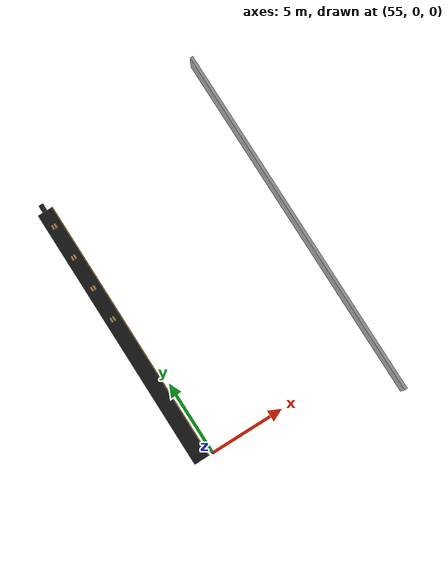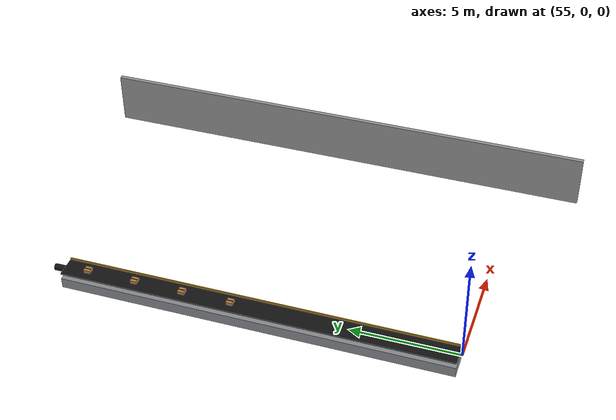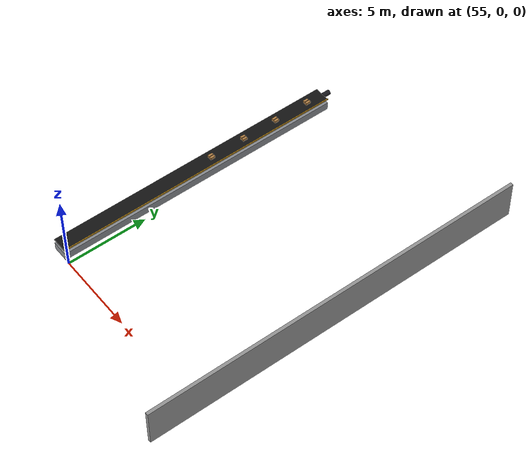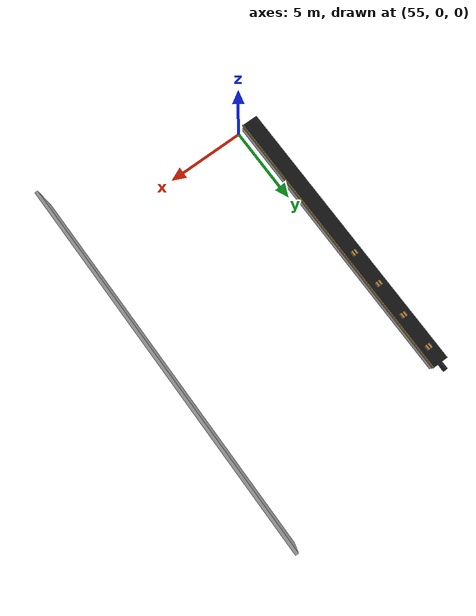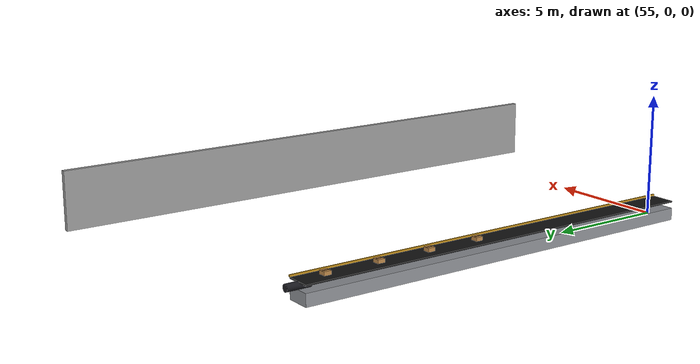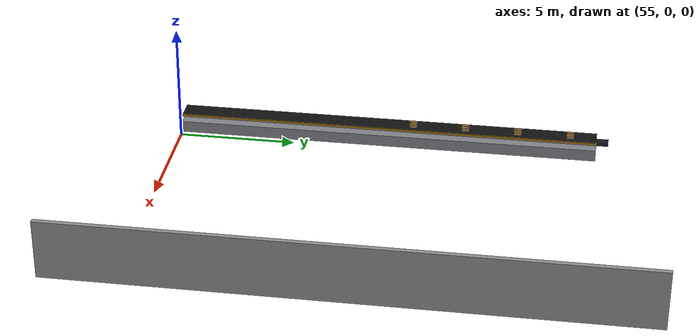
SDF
<sdf version="1.7">
 <world name="warehouse_layout2">
  <model name="ground_plane">
   <static>true</static>
   <link name="link">
    <collision name="collision">
     <geometry><plane><normal>0.0 0.0 1</normal><size>1 1</size></plane></geometry>
    </collision>
   </link>
  </model>
  <model name="east_belt_frame">
   <static>true</static>
   <pose>54.2 9.0 0.25 0 0 1.5708</pose>
   <link name="link">
    <collision name="collision"><geometry><box><size>18.0 1.0 0.5</size></box></geometry></collision>
    <visual name="visual_base">
     <geometry><box><size>18.0 1.0 0.5</size></box></geometry>
     <material>
      <ambient>0.55 0.56 0.58 1</ambient>
      <diffuse>0.55 0.56 0.58 1</diffuse>
      <specular>0.6 0.6 0.6 1</specular>
     </material>
    </visual>
   </link>
  </model>
  <model name="east_belt_deck">
   <static>true</static>
   <pose>54.2 9.0 0.775 0 0 1.5708</pose>
   <link name="link">
    <collision name="collision">
     <geometry><box><size>18.0 1.0 0.05</size></box></geometry>
     <surface><friction><ode><mu>1.0</mu><mu2>1.0</mu2></ode></friction></surface>
    </collision>
    <visual name="visual">
     <geometry><box><size>18.0 1.0 0.05</size></box></geometry>
     <material><ambient>0.08 0.08 0.08 1</ambient><diffuse>0.08 0.08 0.08 1</diffuse></material>
    </visual>
   </link>
  </model>
  <model name="east_belt_rail_right">
   <static>true</static>
   <pose>54.72499999999646 9.00000192843268 0.8400000000000001 0 0 1.5708</pose>
   <link name="link">
    <visual name="visual">
     <geometry><box><size>18.0 0.05 0.08</size></box></geometry>
     <material><ambient>0.75 0.55 0.1 1</ambient><diffuse>0.75 0.55 0.1 1</diffuse></material>
    </visual>
   </link>
  </model>
  <model name="east_belt_roller_end">
   <pose>54.199966941154074 17.999999999939284 0.65 1.5708 0 0</pose>
   <link name="roller_link">
    <inertial>
     <mass>0.5</mass>
     <inertia><ixx>0.01</ixx><iyy>0.01</iyy><izz>0.01</izz><ixy>0</ixy><ixz>0</ixz><iyz>0</iyz></inertia>
    </inertial>
    <visual name="visual">
     <geometry><cylinder><radius>0.15</radius><length>1.0</length></cylinder></geometry>
     <material>
      <ambient>0.1 0.1 0.12 1</ambient>
      <diffuse>0.1 0.1 0.12 1</diffuse>
      <specular>0.4 0.4 0.4 1</specular>
     </material>
    </visual>
    <collision name="collision">
     <geometry><cylinder><radius>0.15</radius><length>1.0</length></cylinder></geometry>
    </collision>
   </link>
   <joint name="spin_joint" type="revolute">
    <parent>world</parent>
    <child>roller_link</child>
    <axis><xyz>0 0 1</xyz><limit><lower>-1e16</lower><upper>1e16</upper></limit></axis>
   </joint>
   <plugin filename="libignition-gazebo-joint-controller-system.so" name="ignition::gazebo::systems::JointController">
    <joint_name>spin_joint</joint_name>
    <initial_velocity>6.0</initial_velocity>
   </plugin>
  </model>
  <model name="east_belt_pkg4">
   <pose>54.19999586764426 10.124999999992411 0.895 0 0 1.5708</pose>
   <link name="box_link">
    <inertial>
     <mass>0.2</mass>
     <inertia><ixx>0.001</ixx><iyy>0.001</iyy><izz>0.001</izz><ixy>0</ixy><ixz>0</ixz><iyz>0</iyz></inertia>
    </inertial>
    <visual name="visual_body">
     <geometry><box><size>0.3 0.3 0.15</size></box></geometry>
     <material><ambient>0.72 0.52 0.28 1</ambient><diffuse>0.72 0.52 0.28 1</diffuse></material>
    </visual>
    <visual name="visual_strap">
     <pose>0 0 0.076 0 0 0</pose>
     <geometry><box><size>0.3 0.045 0.002</size></box></geometry>
     <material><ambient>0.35 0.22 0.1 1</ambient><diffuse>0.35 0.22 0.1 1</diffuse></material>
    </visual>
    <collision name="collision">
     <geometry><box><size>0.3 0.3 0.15</size></box></geometry>
     <surface><friction><ode><mu>1.2</mu><mu2>1.2</mu2></ode></friction></surface>
    </collision>
   </link>
   <plugin filename="libignition-gazebo-velocity-control-system.so" name="ignition::gazebo::systems::VelocityControl">
    <link_name>box_link</link_name>
   </plugin>
  </model>
  <model name="east_belt_pkg5">
   <pose>54.19998760293278 12.37499999997723 0.895 0 0 1.5708</pose>
   <link name="box_link">
    <inertial>
     <mass>0.2</mass>
     <inertia><ixx>0.001</ixx><iyy>0.001</iyy><izz>0.001</izz><ixy>0</ixy><ixz>0</ixz><iyz>0</iyz></inertia>
    </inertial>
    <visual name="visual_body">
     <geometry><box><size>0.3 0.3 0.15</size></box></geometry>
     <material><ambient>0.72 0.52 0.28 1</ambient><diffuse>0.72 0.52 0.28 1</diffuse></material>
    </visual>
    <visual name="visual_strap">
     <pose>0 0 0.076 0 0 0</pose>
     <geometry><box><size>0.3 0.045 0.002</size></box></geometry>
     <material><ambient>0.35 0.22 0.1 1</ambient><diffuse>0.35 0.22 0.1 1</diffuse></material>
    </visual>
    <collision name="collision">
     <geometry><box><size>0.3 0.3 0.15</size></box></geometry>
     <surface><friction><ode><mu>1.2</mu><mu2>1.2</mu2></ode></friction></surface>
    </collision>
   </link>
   <plugin filename="libignition-gazebo-velocity-control-system.so" name="ignition::gazebo::systems::VelocityControl">
    <link_name>box_link</link_name>
   </plugin>
  </model>
  <model name="east_belt_pkg6">
   <pose>54.1999793382213 14.624999999962053 0.895 0 0 1.5708</pose>
   <link name="box_link">
    <inertial>
     <mass>0.2</mass>
     <inertia><ixx>0.001</ixx><iyy>0.001</iyy><izz>0.001</izz><ixy>0</ixy><ixz>0</ixz><iyz>0</iyz></inertia>
    </inertial>
    <visual name="visual_body">
     <geometry><box><size>0.3 0.3 0.15</size></box></geometry>
     <material><ambient>0.72 0.52 0.28 1</ambient><diffuse>0.72 0.52 0.28 1</diffuse></material>
    </visual>
    <visual name="visual_strap">
     <pose>0 0 0.076 0 0 0</pose>
     <geometry><box><size>0.3 0.045 0.002</size></box></geometry>
     <material><ambient>0.35 0.22 0.1 1</ambient><diffuse>0.35 0.22 0.1 1</diffuse></material>
    </visual>
    <collision name="collision">
     <geometry><box><size>0.3 0.3 0.15</size></box></geometry>
     <surface><friction><ode><mu>1.2</mu><mu2>1.2</mu2></ode></friction></surface>
    </collision>
   </link>
   <plugin filename="libignition-gazebo-velocity-control-system.so" name="ignition::gazebo::systems::VelocityControl">
    <link_name>box_link</link_name>
   </plugin>
  </model>
  <model name="east_belt_pkg7">
   <pose>54.199971073509815 16.874999999946873 0.895 0 0 1.5708</pose>
   <link name="box_link">
    <inertial>
     <mass>0.2</mass>
     <inertia><ixx>0.001</ixx><iyy>0.001</iyy><izz>0.001</izz><ixy>0</ixy><ixz>0</ixz><iyz>0</iyz></inertia>
    </inertial>
    <visual name="visual_body">
     <geometry><box><size>0.3 0.3 0.15</size></box></geometry>
     <material><ambient>0.72 0.52 0.28 1</ambient><diffuse>0.72 0.52 0.28 1</diffuse></material>
    </visual>
    <visual name="visual_strap">
     <pose>0 0 0.076 0 0 0</pose>
     <geometry><box><size>0.3 0.045 0.002</size></box></geometry>
     <material><ambient>0.35 0.22 0.1 1</ambient><diffuse>0.35 0.22 0.1 1</diffuse></material>
    </visual>
    <collision name="collision">
     <geometry><box><size>0.3 0.3 0.15</size></box></geometry>
     <surface><friction><ode><mu>1.2</mu><mu2>1.2</mu2></ode></friction></surface>
    </collision>
   </link>
   <plugin filename="libignition-gazebo-velocity-control-system.so" name="ignition::gazebo::systems::VelocityControl">
    <link_name>box_link</link_name>
   </plugin>
  </model>
  <model name="wall_east">
   <static>true</static>
   <pose>66.80000000000001 9.0 1.25 0 0 1.5708</pose>
   <link name="link">
    <collision name="collision"><geometry><box><size>24.0 0.2 2.5</size></box></geometry></collision>
    <visual name="visual">
     <geometry><box><size>24.0 0.2 2.5</size></box></geometry>
     <material><ambient>0.6 0.6 0.6 1</ambient><diffuse>0.6 0.6 0.6 1</diffuse></material>
    </visual>
   </link>
  </model>
 </world>
</sdf>
